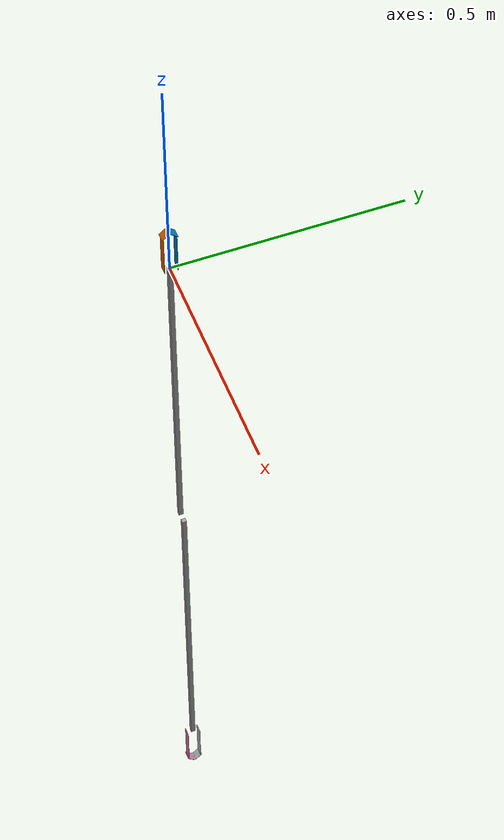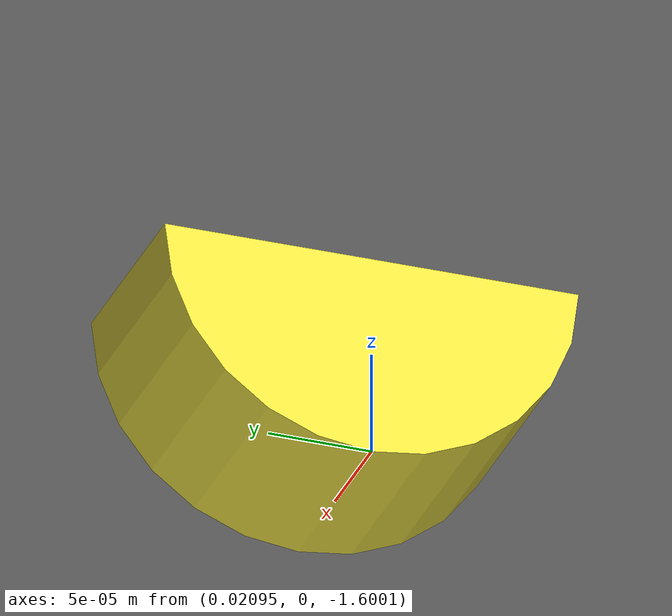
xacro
<?xml version='1.0'?>
<robot xmlns:xacro="http://www.ros.org/wiki/xacro" name='gibbon'>
    <xacro:include filename="$(find gibbon)/urdf/materials.xacro" />
    <xacro:property name="PI" value="3.1415926535897931"/>
    <xacro:property name="arm_radius" value="0.01" />
    <xacro:property name="arm_len" value="0.8" />
    <xacro:property name="arm_mass" value="1.0" />
    <xacro:property name="width" value="0.2" />
    <xacro:property name="polelen" value="0.0001" />

    <xacro:macro name="box_inertia" params="mass width height">
      <inertia
        ixx="${mass / 12.0 * (width*width + height*height)}"
        ixy="0.0"
        ixz="0.0"
        iyy="${mass / 12.0 * (height*height + width*width)}"
        iyz="0.0"
        izz="${mass / 12.0 * (width*width + width*width)}"/>
    </xacro:macro>

    <link name='link_1'>
      <collision>
        <origin rpy="0 0 0" xyz="0 0 -${arm_len/2}"/>
        <geometry>
          <box size="${arm_radius} ${arm_radius} ${arm_len}"/>
        </geometry>
      </collision>
      <visual>
        <origin rpy="0 0 0" xyz="0 0 -${arm_len/2}"/>
        <material name="grey2"/>
        <geometry>
          <box size="${arm_radius} ${arm_radius} ${arm_len}"/>
        </geometry>
      </visual>
      <inertial>
        <mass value="${arm_mass}" />
        <origin rpy="0 0 0" xyz="0 0 -${arm_len/2}"/>
        <xacro:box_inertia mass="${arm_mass}" width="${arm_radius}" height="${arm_len}" />
      </inertial>
    </link>

    <link name='link_2'>
      <collision>
        <origin rpy="0 0 0" xyz="0 0 ${arm_len/2}"/>
        <geometry>
          <box size="${arm_radius} ${arm_radius} ${arm_len}"/>
        </geometry>
      </collision>
      <visual>
        <origin rpy="0 0 0" xyz="0 0 ${arm_len/2}"/>
        <material name="grey1"/>
        <geometry>
          <box size="${arm_radius} ${arm_radius} ${arm_len}"/>
        </geometry>
      </visual>
      <inertial>
        <origin rpy="0 0 0" xyz="0 0 ${arm_len/2}"/>
        <mass value="${arm_mass}" />
        <xacro:box_inertia mass="${arm_mass}" width="${arm_radius}" height="${arm_len}" />
      </inertial>
    </link>

    <joint name="link_1__link_2" type="continuous">
      <parent link="link_1"/>
      <child link="link_2"/>
      <origin rpy="${PI} 0 0" xyz="${2 * arm_radius + 0.001} 0 -${arm_len}"/>
      <dynamics friction="0.0" damping="0.0"/>
    </joint>
    <transmission name="link_1__link_2_trans">
      <type>transmission_interface/SimpleTransmission</type>
      <actuator name="link_1__link_2_motor">
        <hardwareInterface>hardware_interface/EffortJointInterface</hardwareInterface>
        <mechanicalReduction>1</mechanicalReduction>
      </actuator>
      <joint name="link_1__link_2">
        <hardwareInterface>hardware_interface/EffortJointInterface</hardwareInterface>
      </joint>
    </transmission>

    <joint name="link_1__gripper" type="fixed">
      <parent link="link_1"/>
      <child link="link_1_gripper_pole"/>
      <origin rpy="0 -${PI/2} 0" xyz="0 0 0"/>
    </joint>

    <joint name="link_2__gripper" type="fixed">
      <parent link="link_2"/>
      <child link="link_2_gripper_pole"/>
      <origin rpy="0 -${PI/2} 0" xyz="0 0 ${arm_len}"/>
    </joint>

    <link name="link_1_gripper_pole">
      <visual>
        <geometry>
          <cylinder length="${polelen}" radius="${polelen}"/>
        </geometry>
        <origin xyz="0 0 0" rpy="0 0 0 "/>
      </visual>
      <collision>
        <geometry>
          <cylinder length="${polelen}" radius="0.01"/>
        </geometry>
        <origin xyz="0 0 0" rpy="0 0 0 "/>
      </collision>
      <inertial>
        <mass value="${polelen}" />
        <origin xyz="0 0 0" rpy="0 0 0 "/>
        <xacro:box_inertia mass="${polelen}" width="${polelen}" height="${polelen}" />
      </inertial>
    </link>

    <link name="link_2_gripper_pole">
      <visual>
        <geometry>
          <cylinder length="${polelen}" radius="${polelen}"/>
        </geometry>
        <origin xyz="0 0 0" rpy="0 0 0 "/>
      </visual>
      <collision>
        <geometry>
          <cylinder length="${polelen}" radius="0.01"/>
        </geometry>
        <origin xyz="0 0 0" rpy="0 0 0 "/>
      </collision>
      <inertial>
        <mass value="${polelen}" />
        <origin xyz="0 0 0" rpy="0 0 0 "/>
        <xacro:box_inertia mass="${polelen}" width="${polelen}" height="${polelen}" />
      </inertial>
    </link>

    <xacro:macro name="gripper" params="prefix reflect link_name">
      <joint name="${link_name}_${prefix}_gripper_joint" type="revolute">
        <axis xyz="0 0 ${reflect}"/>
        <limit effort="100.0" lower="0.0" upper="3" velocity="10"/>
        <origin rpy="0 0 0" xyz="${polelen} ${reflect*0.014} 0"/>
        <parent link="${link_name}_gripper_pole"/>
        <child link="${link_name}_${prefix}_gripper"/>
        <dynamics friction="0.0" damping="0.0"/>
      </joint>
      <transmission name="${link_name}_${prefix}_gripper_joint_trans">
        <type>transmission_interface/SimpleTransmission</type>
        <actuator name="${link_name}_${prefix}_gripper_joint_motor">
          <hardwareInterface>hardware_interface/EffortJointInterface</hardwareInterface>
          <mechanicalReduction>1</mechanicalReduction>
        </actuator>
        <joint name="${link_name}_${prefix}_gripper_joint">
          <hardwareInterface>hardware_interface/EffortJointInterface</hardwareInterface>
        </joint>
      </transmission>
      <link name="${link_name}_${prefix}_gripper">
        <visual>
          <origin rpy="${reflect*PI/2} 0 ${reflect*PI/2}" xyz="0.05 0 0"/>
          <geometry>
            <box size="0.001 0.02 0.1"/>
          </geometry>
        </visual>
        <collision>
          <origin rpy="${reflect*PI/2} 0 ${reflect*PI/2}" xyz="0.05 0 0"/>
          <geometry>
            <box size="0.001 0.02 0.1"/>
          </geometry>
        </collision>
        <visual>
          <origin rpy="0 0.0 ${reflect * 0.7}" xyz="0.104 ${-1*reflect*0.005} 0"/>
          <geometry>
            <box size="0.001 0.02 0.02"/>
          </geometry>
        </visual>
        <collision>
          <origin rpy="0 0.0 ${reflect * 0.7}" xyz="0.104 ${-1*reflect*0.005} 0"/>
          <geometry>
            <box size="0.001 0.02 0.02"/>
          </geometry>
        </collision>
        <inertial>
          <mass value="0.1" />
          <origin rpy="0 0 0" xyz="0 0 0"/>
          <xacro:box_inertia mass="0.1" width="0.1" height="0.1" />
        </inertial>
      </link>
    </xacro:macro>

    <xacro:gripper prefix="left" reflect="1" link_name="link_1" />
    <xacro:gripper prefix="right" reflect="-1" link_name="link_1" />
    <xacro:gripper prefix="left" reflect="1" link_name="link_2" />
    <xacro:gripper prefix="right" reflect="-1" link_name="link_2" />

    <gazebo reference="link_1">
      <material>Gazebo/Red</material>
      <mu1>1e-01</mu1>
      <mu2>1e-01</mu2>
    </gazebo>
    <gazebo reference="link_2">
      <mu1>1e-01</mu1>
      <mu2>1e-01</mu2>
    </gazebo>

    <gazebo>
      <plugin name="gazebo_ros_control" filename="libgazebo_ros_control.so">
        <robotNamespace>/gibbon</robotNamespace>
        <robotSimType>gazebo_ros_control/DefaultRobotHWSim</robotSimType>
      </plugin>
    </gazebo>
</robot>
